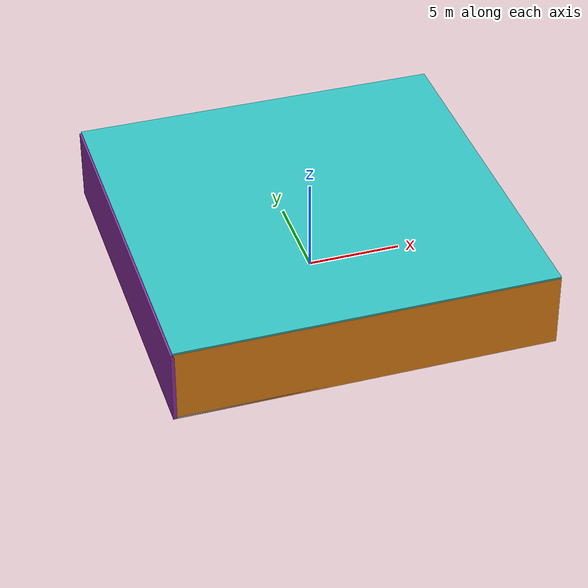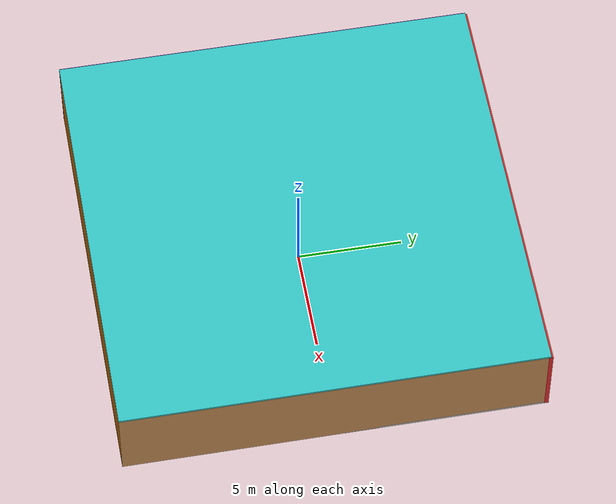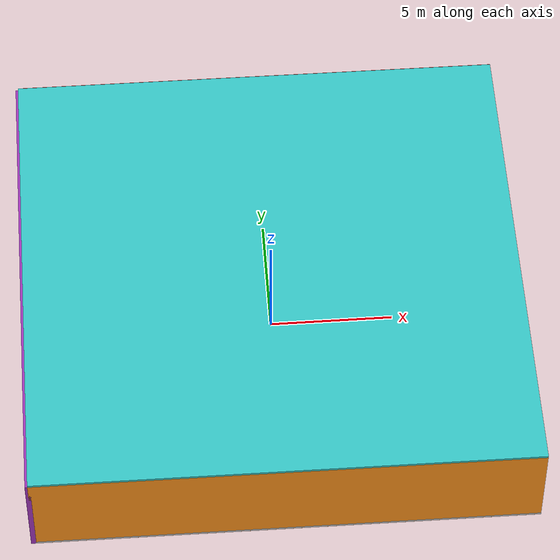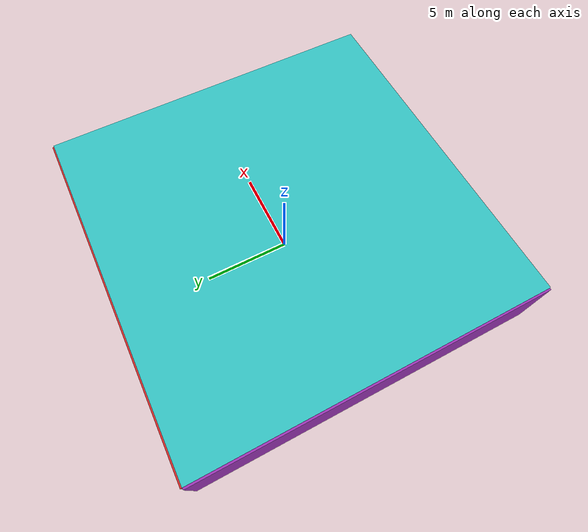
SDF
<sdf version="1.4">
 <world name="default">
  <physics type="ode">
   <max_step_size>0.001</max_step_size>
   <real_time_factor>1</real_time_factor>
   <real_time_update_rate>1000</real_time_update_rate>
   <gravity>0 0 -9.8</gravity>
  </physics>
  <scene><ambient>0.4 0.4 0.4 1</ambient><background>0.7 0.7 0.7 1</background><shadows>1</shadows></scene>
  <model name="Surrounding">
   <static>1</static>
   <link name="Ceiling">
    <collision name="Ceiling_Collision"><geometry><box><size>20 20 0.1</size></box></geometry></collision>
    <visual name="Ceiling_Visual">
     <geometry><box><size>20 20 0.1</size></box></geometry>
     <material>
      <script><uri>file://media/materials/scripts/gazebo.material</uri><name>Gazebo/Turquoise</name></script>
     </material>
    </visual>
    <pose>0 0 4.05 0 0 0</pose>
   </link>
   <link name="Wall_South">
    <collision name="Wall_South_Collision">
     <geometry><box><size>20 0 4</size></box></geometry>
     <pose>0 0 2 0 -0 0</pose>
    </collision>
    <visual name="Wall_South_Visual">
     <pose>0 0 2 0 -0 0</pose>
     <geometry><box><size>20 0 4</size></box></geometry>
     <material>
      <script><uri>file://media/materials/scripts/gazebo.material</uri><name>Gazebo/Orange</name></script>
     </material>
    </visual>
    <velocity_decay><linear>0</linear><angular>0</angular></velocity_decay>
    <pose>0 -10 0 0 -0 0</pose>
   </link>
   <link name="Wall_East">
    <collision name="Wall_21_Collision">
     <geometry><box><size>20 0 4</size></box></geometry>
     <pose>0 0 2 0 -0 0</pose>
    </collision>
    <visual name="Wall_21_Visual">
     <pose>0 0 2 0 -0 0</pose>
     <geometry><box><size>20 0 4</size></box></geometry>
     <material>
      <script><uri>file://media/materials/scripts/gazebo.material</uri><name>Gazebo/WoodPallet</name></script>
     </material>
    </visual>
    <velocity_decay><linear>0</linear><angular>0</angular></velocity_decay>
    <pose>10 0 0 0 -0 1.5708</pose>
   </link>
   <link name="Wall_North">
    <collision name="Wall_22_Collision">
     <geometry><box><size>20 0.2 4</size></box></geometry>
     <pose>0 0 2 0 -0 0</pose>
    </collision>
    <visual name="Wall_22_Visual">
     <pose>0 0 2 0 -0 0</pose>
     <geometry><box><size>20 0.2 4</size></box></geometry>
     <material>
      <script><uri>file://media/materials/scripts/gazebo.material</uri><name>Gazebo/Red</name></script>
     </material>
    </visual>
    <velocity_decay><linear>0</linear><angular>0</angular></velocity_decay>
    <pose>0 10 0 0 -0 0</pose>
   </link>
   <link name="Wall_West">
    <collision name="Wall_23_Collision">
     <geometry><box><size>20 0.2 4</size></box></geometry>
     <pose>0 0 2 0 -0 0</pose>
    </collision>
    <visual name="Wall_23_Visual">
     <pose>0 0 2 0 -0 0</pose>
     <geometry><box><size>20 0.2 4</size></box></geometry>
     <material>
      <script><uri>file://media/materials/scripts/gazebo.material</uri><name>Gazebo/PurpleGlow</name></script>
     </material>
    </visual>
    <velocity_decay><linear>0</linear><angular>0</angular></velocity_decay>
    <pose>-10 0 0 0 0 -1.5708</pose>
   </link>
   <link name="Ground_link">
    <collision name="collision">
     <pose>0 0 .05 0 -0 0</pose>
     <geometry><box><size>20 20 0.1</size></box></geometry>
    </collision>
    <visual name="visual">
     <pose>0 0 .05 0 -0 0</pose>
     <geometry><box><size>20 20 0.1</size></box></geometry>
     <material>
      <script><uri>file://media/materials/scripts/gazebo.material</uri><name>Gazebo/CloudySky</name></script>
     </material>
    </visual>
   </link>
   <static>1</static>
  </model>
  <spherical_coordinates>
   <surface_model>EARTH_WGS84</surface_model>
   <latitude_deg>0</latitude_deg>
   <longitude_deg>0</longitude_deg>
   <elevation>0</elevation>
   <heading_deg>0</heading_deg>
  </spherical_coordinates>
  <light name="lightball_0" type="diffuse">
   <diffuse>0.8 0.8 0.8 1</diffuse>
   <specular>0.2 0.2 0.2 1</specular>
   <attenuation>
    <range>100</range>
    <constant>0.7</constant>
    <linear>0.01</linear>
    <quadratic>0.001</quadratic>
   </attenuation>
   <direction>-0.5 0.1 -0.9</direction>
   <pose>5.45175312074 -5.34122445672 2.29852061889 0 0 0</pose>
  </light>
  <light name="lightball_1" type="diffuse">
   <diffuse>0.8 0.8 0.8 1</diffuse>
   <specular>0.2 0.2 0.2 1</specular>
   <attenuation>
    <range>100</range>
    <constant>0.7</constant>
    <linear>0.01</linear>
    <quadratic>0.001</quadratic>
   </attenuation>
   <direction>-0.5 0.1 -0.9</direction>
   <pose>3.02391869868 2.84006755569 1.07609712014 0 0 0</pose>
  </light>
  <light name="lightball_2" type="diffuse">
   <diffuse>0.8 0.8 0.8 1</diffuse>
   <specular>0.2 0.2 0.2 1</specular>
   <attenuation>
    <range>100</range>
    <constant>0.7</constant>
    <linear>0.01</linear>
    <quadratic>0.001</quadratic>
   </attenuation>
   <direction>-0.5 0.1 -0.9</direction>
   <pose>-9.53231970208 6.71884184456 3.28688347026 0 0 0</pose>
  </light>
  <light name="lightball_3" type="diffuse">
   <diffuse>0.8 0.8 0.8 1</diffuse>
   <specular>0.2 0.2 0.2 1</specular>
   <attenuation>
    <range>100</range>
    <constant>0.7</constant>
    <linear>0.01</linear>
    <quadratic>0.001</quadratic>
   </attenuation>
   <direction>-0.5 0.1 -0.9</direction>
   <pose>7.30255874967 -6.42765850674 0.989505421055 0 0 0</pose>
  </light>
  <light name="lightball_4" type="diffuse">
   <diffuse>0.8 0.8 0.8 1</diffuse>
   <specular>0.2 0.2 0.2 1</specular>
   <attenuation>
    <range>100</range>
    <constant>0.7</constant>
    <linear>0.01</linear>
    <quadratic>0.001</quadratic>
   </attenuation>
   <direction>-0.5 0.1 -0.9</direction>
   <pose>7.56911914394 -0.256212625786 1.5682180052 0 0 0</pose>
  </light>
  <light name="lightball_5" type="diffuse">
   <diffuse>0.8 0.8 0.8 1</diffuse>
   <specular>0.2 0.2 0.2 1</specular>
   <attenuation>
    <range>100</range>
    <constant>0.7</constant>
    <linear>0.01</linear>
    <quadratic>0.001</quadratic>
   </attenuation>
   <direction>-0.5 0.1 -0.9</direction>
   <pose>-3.39012417958 6.02409800484 1.22549153446 0 0 0</pose>
  </light>
  <light name="lightball_6" type="diffuse">
   <diffuse>0.8 0.8 0.8 1</diffuse>
   <specular>0.2 0.2 0.2 1</specular>
   <attenuation>
    <range>100</range>
    <constant>0.7</constant>
    <linear>0.01</linear>
    <quadratic>0.001</quadratic>
   </attenuation>
   <direction>-0.5 0.1 -0.9</direction>
   <pose>6.88612631278 7.02016334839 3.29230693174 0 0 0</pose>
  </light>
  <light name="lightball_7" type="diffuse">
   <diffuse>0.8 0.8 0.8 1</diffuse>
   <specular>0.2 0.2 0.2 1</specular>
   <attenuation>
    <range>100</range>
    <constant>0.7</constant>
    <linear>0.01</linear>
    <quadratic>0.001</quadratic>
   </attenuation>
   <direction>-0.5 0.1 -0.9</direction>
   <pose>6.14764933528 2.60844166474 2.83483581583 0 0 0</pose>
  </light>
  <light name="lightball_8" type="diffuse">
   <diffuse>0.8 0.8 0.8 1</diffuse>
   <specular>0.2 0.2 0.2 1</specular>
   <attenuation>
    <range>100</range>
    <constant>0.7</constant>
    <linear>0.01</linear>
    <quadratic>0.001</quadratic>
   </attenuation>
   <direction>-0.5 0.1 -0.9</direction>
   <pose>-0.51596288238 -6.50159957519 2.0955314333 0 0 0</pose>
  </light>
  <include><uri>model://table</uri><pose>-5.1445318743 2.13039178641 0 0 0 3.13758178261</pose></include>
  <include>
   <uri>model://robocup_3Dsim_goal</uri>
   <pose>-1.37774619157 -7.29233949346 0 0 0 0.914099081098</pose>
  </include>
  <include><uri>model://table</uri><pose>1.29976966297 1.99041989873 0 0 0 0.786369583845</pose></include>
  <include>
   <uri>model://robocup_3Dsim_goal</uri>
   <pose>3.92583325674 -7.00713404811 0 0 0 2.90627467708</pose>
  </include>
  <include><uri>model://cabinet</uri><pose>7.18283801772 -1.28998939662 0 0 0 1.82512522027</pose></include>
  <include><uri>model://table</uri><pose>6.76525515684 1.11107038716 0 0 0 2.82768477651</pose></include>
 </world>
</sdf>

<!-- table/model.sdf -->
<sdf version="1.5">
  <model name="table">
    <static>true</static>
    <link name="link">
      <collision name="surface">
        <pose>0 0 1.0 0 0 0</pose>
        <geometry>
          <box>
            <size>1.5 0.8 0.03</size>
          </box>
        </geometry>
        <surface>
          <friction>
            <ode>
              <mu>0.6</mu>
              <mu2>0.6</mu2>
            </ode>
          </friction>
        </surface>
      </collision>
      <visual name="visual1">
        <pose>0 0 1.0 0 0 0</pose>
        <geometry>
          <box>
            <size>1.5 0.8 0.03</size>
          </box>
        </geometry>
        <material>
          <script>
            <uri>model://media/materials/scripts/gazebo.material</uri>
            <name>Gazebo/Wood</name>
          </script>
        </material>
      </visual>
      <collision name="front_left_leg">
        <pose>0.68 0.38 0.5 0 0 0</pose>
        <geometry>
          <cylinder>
            <radius>0.02</radius>
            <length>1.0</length>
          </cylinder>
        </geometry>
      </collision>
      <visual name="front_left_leg">
        <pose>0.68 0.38 0.5 0 0 0</pose>
        <geometry>
          <cylinder>
            <radius>0.02</radius>
            <length>1.0</length>
          </cylinder>
        </geometry>
        <material>
          <script>
            <uri>model://media/materials/scripts/gazebo.material</uri>
            <name>Gazebo/Grey</name>
          </script>
        </material>
      </visual>
      <collision name="front_right_leg">
        <pose>0.68 -0.38 0.5 0 0 0</pose>
        <geometry>
          <cylinder>
            <radius>0.02</radius>
            <length>1.0</length>
          </cylinder>
        </geometry>
      </collision>
      <visual name="front_right_leg">
        <pose>0.68 -0.38 0.5 0 0 0</pose>
        <geometry>
          <cylinder>
            <radius>0.02</radius>
            <length>1.0</length>
          </cylinder>
        </geometry>
        <material>
          <script>
            <uri>model://media/materials/scripts/gazebo.material</uri>
            <name>Gazebo/Grey</name>
          </script>
        </material>
      </visual>
      <collision name="back_right_leg">
        <pose>-0.68 -0.38 0.5 0 0 0</pose>
        <geometry>
          <cylinder>
            <radius>0.02</radius>
            <length>1.0</length>
          </cylinder>
        </geometry>
      </collision>
      <visual name="back_right_leg">
        <pose>-0.68 -0.38 0.5 0 0 0</pose>
        <geometry>
          <cylinder>
            <radius>0.02</radius>
            <length>1.0</length>
          </cylinder>
        </geometry>
        <material>
          <script>
            <uri>model://media/materials/scripts/gazebo.material</uri>
            <name>Gazebo/Grey</name>
          </script>
        </material>
      </visual>
      <collision name="back_left_leg">
        <pose>-0.68 0.38 0.5 0 0 0</pose>
        <geometry>
          <cylinder>
            <radius>0.02</radius>
            <length>1.0</length>
          </cylinder>
        </geometry>
      </collision>
      <visual name="back_left_leg">
        <pose>-0.68 0.38 0.5 0 0 0</pose>
        <geometry>
          <cylinder>
            <radius>0.02</radius>
            <length>1.0</length>
          </cylinder>
        </geometry>
        <material>
          <script>
            <uri>model://media/materials/scripts/gazebo.material</uri>
            <name>Gazebo/Grey</name>
          </script>
        </material>
      </visual>
    </link>
  </model>
</sdf>

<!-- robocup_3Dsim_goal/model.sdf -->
<sdf version="1.5">
  <model name="robocup_3d_goal">
    <static>true</static>
    <link name="left_post">
      <pose>0 1.05 0.45 0 0 0</pose>
      <collision name="collision">
        <geometry>
          <cylinder>
            <radius>0.05</radius>
            <length>0.9</length>
          </cylinder>
        </geometry>
      </collision>
      <visual name="visual">
        <geometry>
          <cylinder>
            <radius>0.05</radius>
            <length>0.9</length>
          </cylinder>
        </geometry>
        <material>
          <script>
            <uri>file://media/materials/scripts/gazebo.material</uri>
            <name>Gazebo/ZincYellow</name>
          </script>
        </material>
      </visual>
    </link>
    <link name="left_support_horiz_lower">
      <pose>0.30 1.05 0.01 0 0 0</pose>
      <collision name="collision">
        <geometry>
          <box>
            <size>0.50 0.02 0.02</size>
          </box>
        </geometry>
      </collision>
      <visual name="visual">
        <geometry>
          <box>
            <size>0.50 0.02 0.02</size>
          </box>
        </geometry>
        <material>
          <script>
            <uri>file://media/materials/scripts/gazebo.material</uri>
            <name>Gazebo/White</name>
          </script>
        </material>
      </visual>
    </link>
    <link name="left_support_horiz_upper">
      <pose>0.30 1.05 0.79 0 0 0</pose>
      <collision name="collision">
        <geometry>
          <box>
            <size>0.50 0.02 0.02</size>
          </box>
        </geometry>
      </collision>
      <visual name="visual">
        <geometry>
          <box>
            <size>0.50 0.02 0.02</size>
          </box>
        </geometry>
        <material>
          <script>
            <uri>file://media/materials/scripts/gazebo.material</uri>
            <name>Gazebo/White</name>
          </script>
        </material>
      </visual>
    </link>
    <link name="left_support_vertical">
      <pose>0.56 1.05 0.4 0 1.5708 0</pose>
      <collision name="collision">
        <geometry>
          <box>
            <size>0.80 0.02 0.02</size>
          </box>
        </geometry>
      </collision>
      <visual name="visual">
        <geometry>
          <box>
            <size>0.80 0.02 0.02</size>
          </box>
        </geometry>
        <material>
          <script>
            <uri>file://media/materials/scripts/gazebo.material</uri>
            <name>Gazebo/White</name>
          </script>
        </material>
      </visual>
    </link>
    <link name="right_support_horiz_lower">
      <pose>0.30 -1.05 0.01 0 0 0</pose>
      <collision name="collision">
        <geometry>
          <box>
            <size>0.50 0.02 0.02</size>
          </box>
        </geometry>
      </collision>
      <visual name="visual">
        <geometry>
          <box>
            <size>0.50 0.02 0.02</size>
          </box>
        </geometry>
        <material>
          <script>
            <uri>file://media/materials/scripts/gazebo.material</uri>
            <name>Gazebo/White</name>
          </script>
        </material>
      </visual>
    </link>
    <link name="right_support_horiz_upper">
      <pose>0.30 -1.05 0.79 0 0 0</pose>
      <collision name="collision">
        <geometry>
          <box>
            <size>0.50 0.02 0.02</size>
          </box>
        </geometry>
      </collision>
      <visual name="visual">
        <geometry>
          <box>
            <size>0.50 0.02 0.02</size>
          </box>
        </geometry>
        <material>
          <script>
            <uri>file://media/materials/scripts/gazebo.material</uri>
            <name>Gazebo/White</name>
          </script>
        </material>
      </visual>
    </link>
    <link name="right_support_vertical">
      <pose>0.56 -1.05 0.4 0 1.5708 0</pose>
      <collision name="collision">
        <geometry>
          <box>
            <size>0.80 0.02 0.02</size>
          </box>
        </geometry>
      </collision>
      <visual name="visual">
        <geometry>
          <box>
            <size>0.80 0.02 0.02</size>
          </box>
        </geometry>
        <material>
          <script>
            <uri>file://media/materials/scripts/gazebo.material</uri>
            <name>Gazebo/White</name>
          </script>
        </material>
      </visual>
    </link>
    <link name="center_support_horiz_lower">
      <pose>0.56 0 0.01 0 1.5708 0</pose>
      <collision name="collision">
        <geometry>
          <box>
            <size>0.02 2.08 0.02</size>
          </box>
        </geometry>
      </collision>
      <visual name="visual">
        <geometry>
          <box>
            <size>0.02 2.08 0.02</size>
          </box>
        </geometry>
        <material>
          <script>
            <uri>file://media/materials/scripts/gazebo.material</uri>
            <name>Gazebo/White</name>
          </script>
        </material>
      </visual>
    </link>
    <link name="center_support_horiz_upper">
      <pose>0.56 0 0.79 0 1.5708 0</pose>
      <collision name="collision">
        <geometry>
          <box>
            <size>0.02 2.08 0.02</size>
          </box>
        </geometry>
      </collision>
      <visual name="visual">
        <geometry>
          <box>
            <size>0.02 2.08 0.02</size>
          </box>
        </geometry>
        <material>
          <script>
            <uri>file://media/materials/scripts/gazebo.material</uri>
            <name>Gazebo/White</name>
          </script>
        </material>
      </visual>
    </link>
    <link name="right_post">
      <pose>0 -1.05 0.45 0 0 0</pose>
      <collision name="collision">
        <geometry>
          <cylinder>
            <radius>0.05</radius>
            <length>0.9</length>
          </cylinder>
        </geometry>
      </collision>
      <visual name="visual">
        <geometry>
          <cylinder>
            <radius>0.05</radius>
            <length>0.9</length>
          </cylinder>
        </geometry>
        <material>
          <script>
            <uri>file://media/materials/scripts/gazebo.material</uri>
            <name>Gazebo/ZincYellow</name>
          </script>
        </material>
      </visual>
    </link>
    <link name="crossbar">
      <pose>0 0 0.85 1.57 1.57 0</pose>
      <collision name="collision">
        <geometry>
          <cylinder>
            <radius>0.05</radius>
            <length>2.0</length>
          </cylinder>
        </geometry>
      </collision>
      <visual name="visual">
        <geometry>
          <cylinder>
            <radius>0.05</radius>
            <length>2.0</length>
          </cylinder>
        </geometry>
        <material>
          <script>
            <uri>file://media/materials/scripts/gazebo.material</uri>
            <name>Gazebo/ZincYellow</name>
          </script>
        </material>
      </visual>
    </link>
    <link name="center_net">
      <pose>0.56 0 0.40 0 0 0</pose>
      <collision name="collision">
        <geometry>
          <box>
            <size>0.01 2.1 0.80</size>
          </box>
        </geometry>
      </collision>
      <visual name="visual">
        <geometry>
          <box>
            <size>0.01 2.1 0.80</size>
          </box>
        </geometry>
        <material>
          <script>
            <uri>model://../model_source/models/robocup09_spl_field/materials/scripts/</uri>
            <uri>model://../model_source/models/robocup09_spl_field/materials/textures/</uri>
            <name>RoboCup/Net</name>
          </script>
        </material>
      </visual>
    </link>
    <link name="left_net">
      <pose>0.30 1.05 0.40 0 0 0</pose>
      <collision name="collision">
        <geometry>
          <box>
            <size>0.50 0.01 0.76</size>
          </box>
        </geometry>
      </collision>
      <visual name="visual">
        <geometry>
          <box>
            <size>0.50 0.01 0.76</size>
          </box>
        </geometry>
        <material>
          <script>
            <uri>model://../model_source/models/robocup09_spl_field/materials/scripts/</uri>
            <uri>model://../model_source/models/robocup09_spl_field/materials/textures/</uri>
            <name>RoboCup/Net</name>
          </script>
        </material>
      </visual>
    </link>
    <link name="right_net">
      <pose>0.30 -1.05 0.40 0 0 0</pose>
      <collision name="collision">
        <geometry>
          <box>
            <size>0.50 0.01 0.76</size>
          </box>
        </geometry>
      </collision>
      <visual name="visual">
        <geometry>
          <box>
            <size>0.50 0.01 0.76</size>
          </box>
        </geometry>
        <material>
          <script>
            <uri>model://../model_source/models/robocup09_spl_field/materials/scripts/</uri>
            <uri>model://../model_source/models/robocup09_spl_field/materials/textures/</uri>
            <name>RoboCup/Net</name>
          </script>
        </material>
      </visual>
    </link>
  </model>
</sdf>

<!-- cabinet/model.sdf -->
<sdf version="1.5">
  <model name="cabinet">
    <static>true</static>
    <link name="cabinet_bottom_plate">
      <inertial>
        <pose>0 0 -1 0 0 0</pose>
        <inertia>
          <ixx>2.050000</ixx>
          <ixy>0</ixy>
          <ixz>0</ixz>
          <iyy>2.050000</iyy>
          <iyz>0</iyz>
          <izz>2.050000</izz>
        </inertia>
        <mass>25.000000</mass>
      </inertial>
      <collision name="cabinet_bottom_plate_geom">
        <pose>0 0 0.010000 0 0 0</pose>
        <geometry>
          <box>
            <size>0.450000 0.450000 0.020000</size>
          </box>
        </geometry>
      </collision>
      <visual name="cabinet_bottom_plate_geom_visual">
        <pose>0 0 0.010000 0 0 0</pose>
        <geometry>
          <box>
            <size>0.450000 0.450000 0.020000</size>
          </box>
        </geometry>
        <material>
          <script>
            <uri>model://media/materials/scripts/gazebo.material</uri>
            <name>Gazebo/Wood</name>
          </script>
        </material>
      </visual>
      <collision name="cabinet_bottom_plate_geom_cabinet_back_plate">
        <pose>0.235000 0 0.510000 0 0 0</pose>
        <geometry>
          <box>
            <size>0.020000 0.450000 1.020000</size>
          </box>
        </geometry>
      </collision>
      <visual name="cabinet_bottom_plate_geom_cabinet_back_plate_visual">
        <pose>0.235000 0 0.510000 0 0 0</pose>
        <geometry>
          <box>
            <size>0.020000 0.450000 1.020000</size>
          </box>
        </geometry>
        <material>
          <script>
            <uri>model://media/materials/scripts/gazebo.material</uri>
            <name>Gazebo/Wood</name>
          </script>
        </material>
      </visual>
      <collision name="cabinet_bottom_plate_geom_cabinet_left_plate">
        <pose>0 0.235000 0.510000 0 0 0</pose>
        <geometry>
          <box>
            <size>0.450000 0.020000 1.020000</size>
          </box>
        </geometry>
      </collision>
      <visual name="cabinet_bottom_plate_geom_cabinet_left_plate_visual">
        <pose>0 0.235000 0.510000 0 0 0</pose>
        <geometry>
          <box>
            <size>0.450000 0.020000 1.020000</size>
          </box>
        </geometry>
        <material>
          <script>
            <uri>model://media/materials/scripts/gazebo.material</uri>
            <name>Gazebo/Wood</name>
          </script>
        </material>
      </visual>
      <collision name="cabinet_bottom_plate_geom_cabinet_middle_plate">
        <pose>0 0 0.510000 0 0 0</pose>
        <geometry>
          <box>
            <size>0.450000 0.450000 0.020000</size>
          </box>
        </geometry>
      </collision>
      <visual name="cabinet_bottom_plate_geom_cabinet_middle_plate_visual">
        <pose>0 0 0.510000 0 0 0</pose>
        <geometry>
          <box>
            <size>0.450000 0.450000 0.020000</size>
          </box>
        </geometry>
        <material>
          <script>
            <uri>model://media/materials/scripts/gazebo.material</uri>
            <name>Gazebo/Wood</name>
          </script>
        </material>
      </visual>
      <collision name="cabinet_bottom_plate_geom_cabinet_right_plate">
        <pose>0 -0.235000 0.510000 0 0 0</pose>
        <geometry>
          <box>
            <size>0.450000 0.020000 1.020000</size>
          </box>
        </geometry>
      </collision>
      <visual name="cabinet_bottom_plate_geom_cabinet_right_plate_visual">
        <pose>0 -0.235000 0.510000 0 0 0</pose>
        <geometry>
          <box>
            <size>0.450000 0.020000 1.020000</size>
          </box>
        </geometry>
        <material>
          <script>
            <uri>model://media/materials/scripts/gazebo.material</uri>
            <name>Gazebo/Wood</name>
          </script>
        </material>
      </visual>
      <collision name="cabinet_bottom_plate_geom_cabinet_top_plate">
        <pose>0 0 1.010000 0 0 0</pose>
        <geometry>
          <box>
            <size>0.450000 0.450000 0.020000</size>
          </box>
        </geometry>
      </collision>
      <visual name="cabinet_bottom_plate_geom_cabinet_top_plate_visual">
        <pose>0 0 1.010000 0 0 0</pose>
        <geometry>
          <box>
            <size>0.450000 0.450000 0.020000</size>
          </box>
        </geometry>
        <material>
          <script>
            <uri>model://media/materials/scripts/gazebo.material</uri>
            <name>Gazebo/Wood</name>
          </script>
        </material>
      </visual>
    </link>
  </model>
</sdf>
